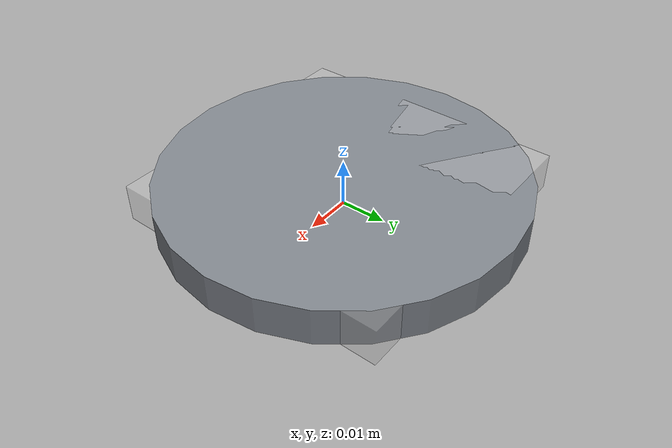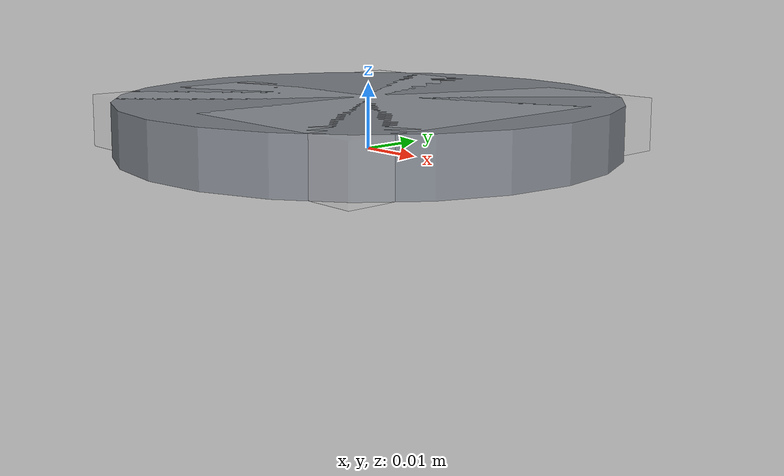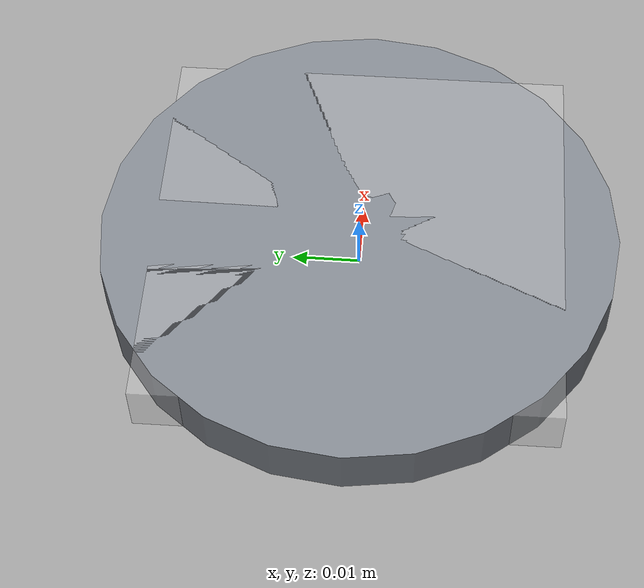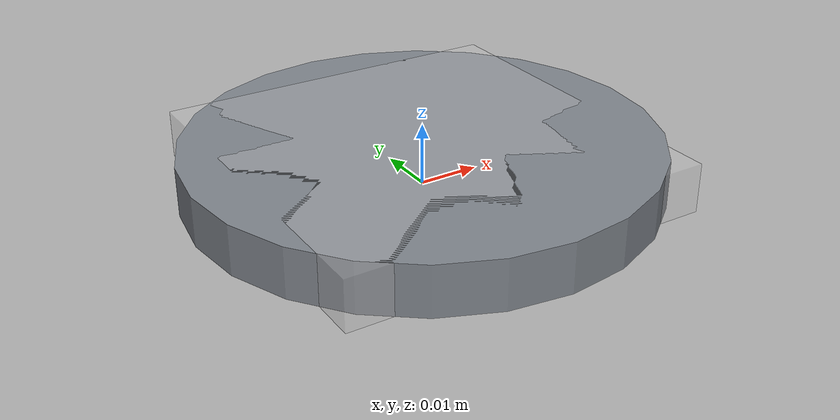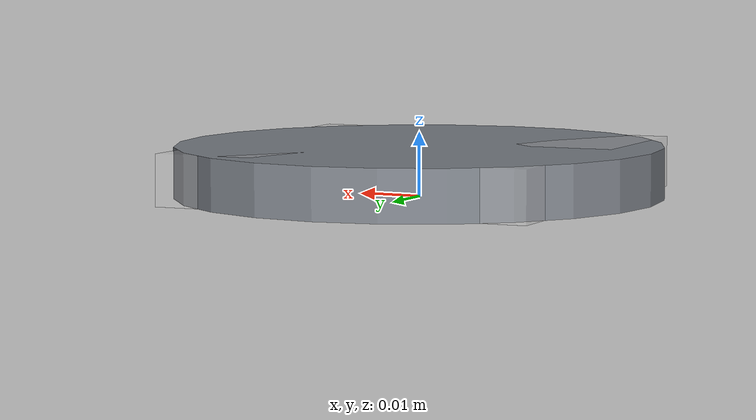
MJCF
<mujoco model="steel_plate_round">
  <asset>
    <material name="steel_plate_round_mat" rgba="0.50 0.52 0.55 1" specular="0.18" shininess="0.25" reflectance="0.03" />
  </asset>

  <worldbody>
    <body>
      <body name="object">
        <site type="cylinder" pos="0 0 0.0072" quat="1 0 0 0" size="0.038 0.0008" group="0" rgba="0.8 0.8 0.0 0" name="top_side" />
        <site type="cylinder" pos="0 0 0.0008" quat="1 0 0 0" size="0.038 0.0008" group="0" rgba="0.8 0.8 0.0 0" name="bottom_side" />
        <site type="box" pos="0.038 0 0.004" quat="1 0 0 0" size="0.0008 0.038 0.004" group="0" rgba="0.8 0.8 0.0 0" name="right_side" />
        <site type="box" pos="-0.038 0 0.004" quat="1 0 0 0" size="0.0008 0.038 0.004" group="0" rgba="0.8 0.8 0.0 0" name="left_side" />
        <site type="sphere" pos="0 0 0.014" size="0.006" group="1" rgba="1 0 1 0" name="center_marker" />

        <geom
          name="steel_plate_round_visual"
          type="cylinder"
          pos="0 0 0.004"
          size="0.038 0.004"
          material="steel_plate_round_mat"
          contype="0"
          conaffinity="0"
          group="1"
        />
        <geom
          name="steel_plate_round_collision"
          solimp="0.998 0.998 0.001"
          solref="0.001 1"
          density="180"
          friction="1.0 0.3 0.1"
          type="box"
          pos="0 0 0.004"
          size="0.030 0.030 0.004"
          group="0"
          rgba="0.8 0.8 0.8 0.3"
        />
      </body>

      <site rgba="0 0 0 0" size="0.005" pos="0 0 -0.06" name="bottom_site" />
      <site rgba="0 0 0 0" size="0.005" pos="0 0 0.04" name="top_site" />
      <site rgba="0 0 0 0" size="0.005" pos="0.038 0 0" name="horizontal_radius_site" />
    </body>
  </worldbody>
</mujoco>
